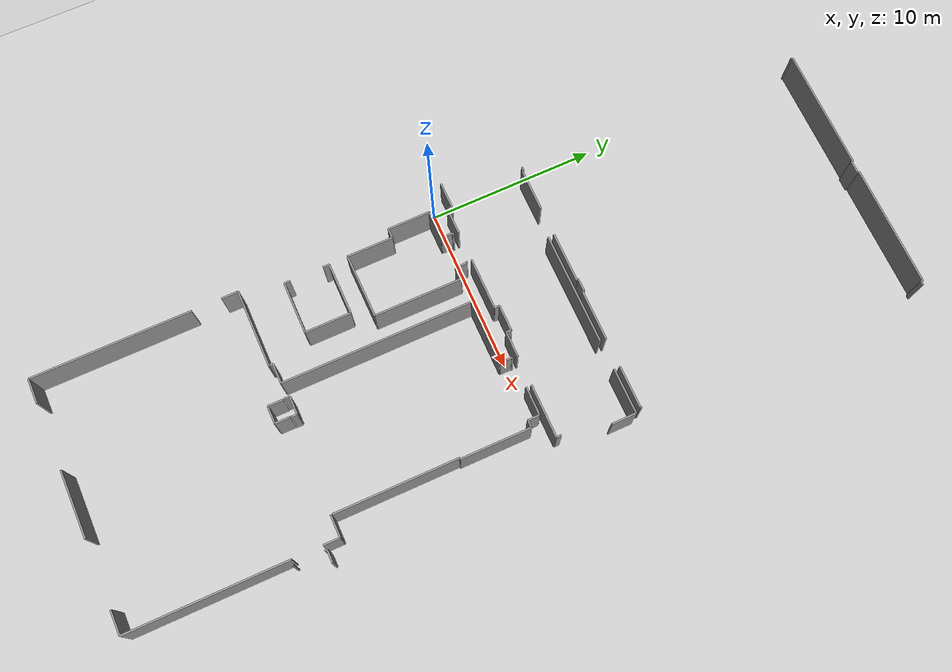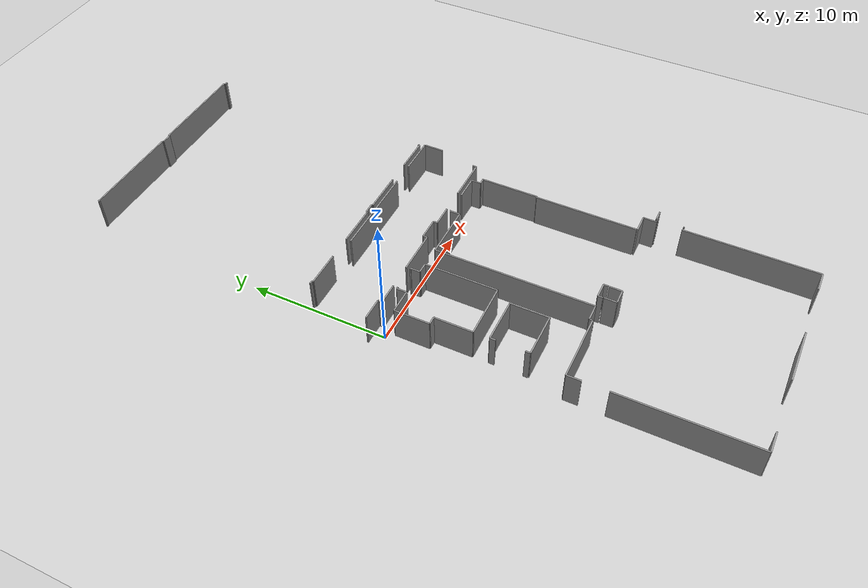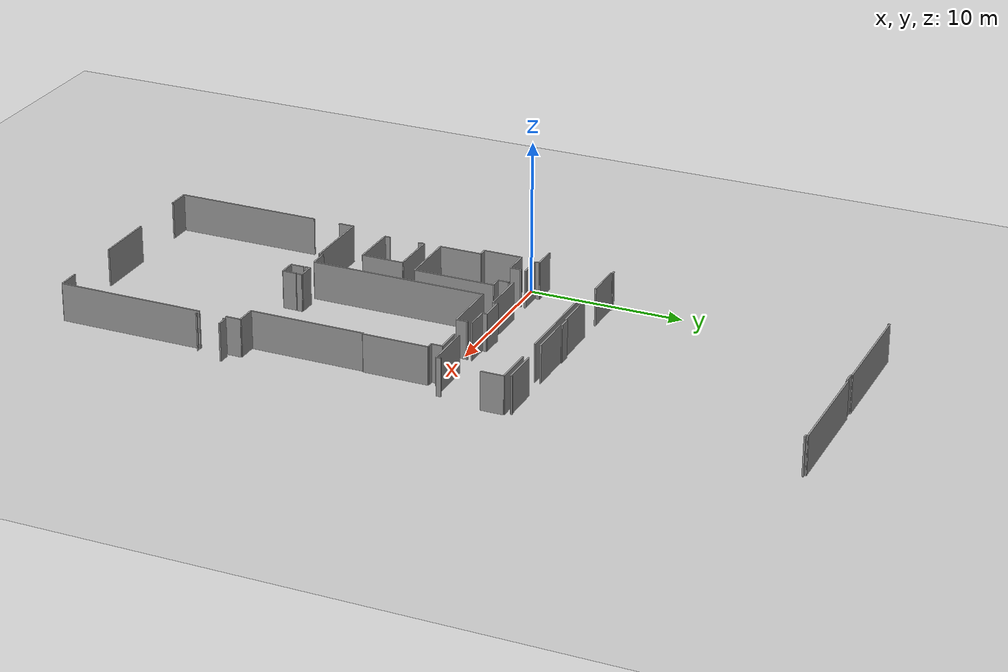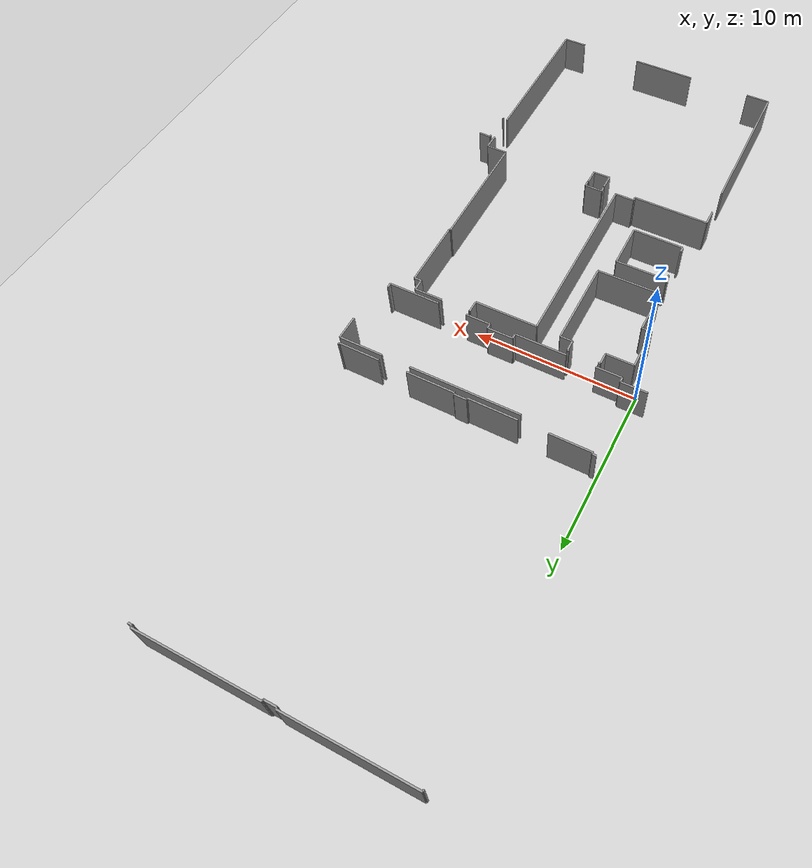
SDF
<sdf version="1.6">
 <world name="default">
  <model name="ground_plane">
   <static>1</static>
   <link name="link">
    <collision name="collision">
     <geometry><plane><normal>0 0 1</normal><size>100 100</size></plane></geometry>
     <surface><friction><ode><mu>100</mu><mu2>50</mu2></ode></friction></surface>
    </collision>
    <visual name="visual">
     <cast_shadows>0</cast_shadows>
     <geometry><plane><normal>0 0 1</normal><size>100 100</size></plane></geometry>
     <material>
      <script><uri>file://media/materials/scripts/gazebo.material</uri><name>Gazebo/Grey</name></script>
     </material>
    </visual>
   </link>
  </model>
  <model name="50057023">
   <static>1</static>
   <link name="Wall_90">
    <collision name="Wall_90_Collision">
     <geometry><box><size>0.108996107825 0.1 2.5</size></box></geometry>
     <pose>0.0544980539125 0 1.25 0 0 0</pose>
    </collision>
    <visual name="Wall_90_Visual">
     <pose>0.0544980539125 0 1.25 0 0 0</pose>
     <geometry><box><size>0.108996107825 0.1 2.5</size></box></geometry>
     <material>
      <script><uri>file://media/materials/scripts/gazebo.material</uri><name>Gazebo/Grey</name></script>
      <ambient>1 1 1 1</ambient>
     </material>
    </visual>
    <pose>56.2826750687 -0.111911120011 0 0 0 1.57079632679</pose>
   </link>
   <link name="Wall_91">
    <collision name="Wall_91_Collision">
     <geometry><box><size>7.31668058691 0.1 2.5</size></box></geometry>
     <pose>3.65834029345 0 1.25 0 0 0</pose>
    </collision>
    <visual name="Wall_91_Visual">
     <pose>3.65834029345 0 1.25 0 0 0</pose>
     <geometry><box><size>7.31668058691 0.1 2.5</size></box></geometry>
     <material>
      <script><uri>file://media/materials/scripts/gazebo.material</uri><name>Gazebo/Grey</name></script>
      <ambient>1 1 1 1</ambient>
     </material>
    </visual>
    <pose>56.2826750687 -0.00291501218602 0 0 0 0.0</pose>
   </link>
   <link name="Wall_92">
    <collision name="Wall_92_Collision">
     <geometry><box><size>0.0916327743692 0.1 2.5</size></box></geometry>
     <pose>0.0458163871846 0 1.25 0 0 0</pose>
    </collision>
    <visual name="Wall_92_Visual">
     <pose>0.0458163871846 0 1.25 0 0 0</pose>
     <geometry><box><size>0.0916327743692 0.1 2.5</size></box></geometry>
     <material>
      <script><uri>file://media/materials/scripts/gazebo.material</uri><name>Gazebo/Grey</name></script>
      <ambient>1 1 1 1</ambient>
     </material>
    </visual>
    <pose>63.5993556556 -0.00291501218602 0 0 0 -1.57079632679</pose>
   </link>
   <link name="Wall_93">
    <collision name="Wall_93_Collision">
     <geometry><box><size>0.741680491851 0.1 2.5</size></box></geometry>
     <pose>0.370840245926 0 1.25 0 0 0</pose>
    </collision>
    <visual name="Wall_93_Visual">
     <pose>0.370840245926 0 1.25 0 0 0</pose>
     <geometry><box><size>0.741680491851 0.1 2.5</size></box></geometry>
     <material>
      <script><uri>file://media/materials/scripts/gazebo.material</uri><name>Gazebo/Grey</name></script>
      <ambient>1 1 1 1</ambient>
     </material>
    </visual>
    <pose>63.5993556556 -0.0945477865552 0 0 0 0.0</pose>
   </link>
   <link name="Wall_94">
    <collision name="Wall_94_Collision">
     <geometry><box><size>0.0916327743692 0.1 2.5</size></box></geometry>
     <pose>0.0458163871846 0 1.25 0 0 0</pose>
    </collision>
    <visual name="Wall_94_Visual">
     <pose>0.0458163871846 0 1.25 0 0 0</pose>
     <geometry><box><size>0.0916327743692 0.1 2.5</size></box></geometry>
     <material>
      <script><uri>file://media/materials/scripts/gazebo.material</uri><name>Gazebo/Grey</name></script>
      <ambient>1 1 1 1</ambient>
     </material>
    </visual>
    <pose>64.3410361474 -0.0945477865552 0 0 0 1.57079632679</pose>
   </link>
   <link name="Wall_95">
    <collision name="Wall_95_Collision">
     <geometry><box><size>7.27498323868 0.1 2.5</size></box></geometry>
     <pose>3.63749161934 0 1.25 0 0 0</pose>
    </collision>
    <visual name="Wall_95_Visual">
     <pose>3.63749161934 0 1.25 0 0 0</pose>
     <geometry><box><size>7.27498323868 0.1 2.5</size></box></geometry>
     <material>
      <script><uri>file://media/materials/scripts/gazebo.material</uri><name>Gazebo/Grey</name></script>
      <ambient>1 1 1 1</ambient>
     </material>
    </visual>
    <pose>64.3410361474 -0.00291501218602 0 0 0 0.0</pose>
   </link>
   <link name="Wall_96">
    <collision name="Wall_96_Collision">
     <geometry><box><size>0.120022458268 0.1 2.5</size></box></geometry>
     <pose>0.0600112291339 0 1.25 0 0 0</pose>
    </collision>
    <visual name="Wall_96_Visual">
     <pose>0.0600112291339 0 1.25 0 0 0</pose>
     <geometry><box><size>0.120022458268 0.1 2.5</size></box></geometry>
     <material>
      <script><uri>file://media/materials/scripts/gazebo.material</uri><name>Gazebo/Grey</name></script>
      <ambient>1 1 1 1</ambient>
     </material>
    </visual>
    <pose>71.6160193861 -0.00291501218602 0 0 0 -1.57079632679</pose>
   </link>
   <link name="Wall_97">
    <collision name="Wall_97_Collision">
     <geometry><box><size>0.228131388471 0.1 2.5</size></box></geometry>
     <pose>0.114065694235 0 1.25 0 0 0</pose>
    </collision>
    <visual name="Wall_97_Visual">
     <pose>0.114065694235 0 1.25 0 0 0</pose>
     <geometry><box><size>0.228131388471 0.1 2.5</size></box></geometry>
     <material>
      <script><uri>file://media/materials/scripts/gazebo.material</uri><name>Gazebo/Grey</name></script>
      <ambient>1 1 1 1</ambient>
     </material>
    </visual>
    <pose>71.6160193861 -0.122937470454 0 0 0 0.0</pose>
   </link>
   <link name="Wall_100">
    <collision name="Wall_100_Collision">
     <geometry><box><size>0.0999975919465 0.1 2.5</size></box></geometry>
     <pose>0.0499987959732 0 1.25 0 0 0</pose>
    </collision>
    <visual name="Wall_100_Visual">
     <pose>0.0499987959732 0 1.25 0 0 0</pose>
     <geometry><box><size>0.0999975919465 0.1 2.5</size></box></geometry>
     <material>
      <script><uri>file://media/materials/scripts/gazebo.material</uri><name>Gazebo/Grey</name></script>
      <ambient>1 1 1 1</ambient>
     </material>
    </visual>
    <pose>71.6409870992 -17.5945065962 0 0 0 -1.57079632679</pose>
   </link>
   <link name="Wall_101">
    <collision name="Wall_101_Collision">
     <geometry><box><size>2.54163714689 0.1 2.5</size></box></geometry>
     <pose>1.27081857344 0 1.25 0 0 0</pose>
    </collision>
    <visual name="Wall_101_Visual">
     <pose>1.27081857344 0 1.25 0 0 0</pose>
     <geometry><box><size>2.54163714689 0.1 2.5</size></box></geometry>
     <material>
      <script><uri>file://media/materials/scripts/gazebo.material</uri><name>Gazebo/Grey</name></script>
      <ambient>1 1 1 1</ambient>
     </material>
    </visual>
    <pose>71.6409870992 -17.6945041881 0 0 0 3.14159265359</pose>
   </link>
   <link name="Wall_102">
    <collision name="Wall_102_Collision">
     <geometry><box><size>2.98547943712 0.1 2.5</size></box></geometry>
     <pose>1.49273971856 0 1.25 0 0 0</pose>
    </collision>
    <visual name="Wall_102_Visual">
     <pose>1.49273971856 0 1.25 0 0 0</pose>
     <geometry><box><size>2.98547943712 0.1 2.5</size></box></geometry>
     <material>
      <script><uri>file://media/materials/scripts/gazebo.material</uri><name>Gazebo/Grey</name></script>
      <ambient>1 1 1 1</ambient>
     </material>
    </visual>
    <pose>67.356933103 -17.6945041881 0 0 0 3.14159265359</pose>
   </link>
   <link name="Wall_103">
    <collision name="Wall_103_Collision">
     <geometry><box><size>0.0930269106321 0.1 2.5</size></box></geometry>
     <pose>0.046513455316 0 1.25 0 0 0</pose>
    </collision>
    <visual name="Wall_103_Visual">
     <pose>0.046513455316 0 1.25 0 0 0</pose>
     <geometry><box><size>0.0930269106321 0.1 2.5</size></box></geometry>
     <material>
      <script><uri>file://media/materials/scripts/gazebo.material</uri><name>Gazebo/Grey</name></script>
      <ambient>1 1 1 1</ambient>
     </material>
    </visual>
    <pose>64.3714536659 -17.6945041881 0 0 0 1.57079632679</pose>
   </link>
   <link name="Wall_104">
    <collision name="Wall_104_Collision">
     <geometry><box><size>0.775393241481 0.1 2.5</size></box></geometry>
     <pose>0.38769662074 0 1.25 0 0 0</pose>
    </collision>
    <visual name="Wall_104_Visual">
     <pose>0.38769662074 0 1.25 0 0 0</pose>
     <geometry><box><size>0.775393241481 0.1 2.5</size></box></geometry>
     <material>
      <script><uri>file://media/materials/scripts/gazebo.material</uri><name>Gazebo/Grey</name></script>
      <ambient>1 1 1 1</ambient>
     </material>
    </visual>
    <pose>64.3714536659 -17.6014772775 0 0 0 3.14159265359</pose>
   </link>
   <link name="Wall_105">
    <collision name="Wall_105_Collision">
     <geometry><box><size>0.0941675675744 0.1 2.5</size></box></geometry>
     <pose>0.0470837837872 0 1.25 0 0 0</pose>
    </collision>
    <visual name="Wall_105_Visual">
     <pose>0.0470837837872 0 1.25 0 0 0</pose>
     <geometry><box><size>0.0941675675744 0.1 2.5</size></box></geometry>
     <material>
      <script><uri>file://media/materials/scripts/gazebo.material</uri><name>Gazebo/Grey</name></script>
      <ambient>1 1 1 1</ambient>
     </material>
    </visual>
    <pose>63.5960604244 -17.6014772775 0 0 0 -1.57079632679</pose>
   </link>
   <link name="Wall_106">
    <collision name="Wall_106_Collision">
     <geometry><box><size>2.99270359776 0.1 2.5</size></box></geometry>
     <pose>1.49635179888 0 1.25 0 0 0</pose>
    </collision>
    <visual name="Wall_106_Visual">
     <pose>1.49635179888 0 1.25 0 0 0</pose>
     <geometry><box><size>2.99270359776 0.1 2.5</size></box></geometry>
     <material>
      <script><uri>file://media/materials/scripts/gazebo.material</uri><name>Gazebo/Grey</name></script>
      <ambient>1 1 1 1</ambient>
     </material>
    </visual>
    <pose>63.5960604244 -17.6956448451 0 0 0 3.14159265359</pose>
   </link>
   <link name="Wall_107">
    <collision name="Wall_107_Collision">
     <geometry><box><size>2.53365254829 0.1 2.5</size></box></geometry>
     <pose>1.26682627415 0 1.25 0 0 0</pose>
    </collision>
    <visual name="Wall_107_Visual">
     <pose>1.26682627415 0 1.25 0 0 0</pose>
     <geometry><box><size>2.53365254829 0.1 2.5</size></box></geometry>
     <material>
      <script><uri>file://media/materials/scripts/gazebo.material</uri><name>Gazebo/Grey</name></script>
      <ambient>1 1 1 1</ambient>
     </material>
    </visual>
    <pose>58.8410418507 -17.6956448451 0 0 0 3.14159265359</pose>
   </link>
   <link name="Wall_108">
    <collision name="Wall_108_Collision">
     <geometry><box><size>0.0927734313115 0.1 2.5</size></box></geometry>
     <pose>0.0463867156558 0 1.25 0 0 0</pose>
    </collision>
    <visual name="Wall_108_Visual">
     <pose>0.0463867156558 0 1.25 0 0 0</pose>
     <geometry><box><size>0.0927734313115 0.1 2.5</size></box></geometry>
     <material>
      <script><uri>file://media/materials/scripts/gazebo.material</uri><name>Gazebo/Grey</name></script>
      <ambient>1 1 1 1</ambient>
     </material>
    </visual>
    <pose>56.3073893024 -17.6956448451 0 0 0 1.57079632679</pose>
   </link>
   <link name="Wall_109">
    <collision name="Wall_109_Collision">
     <geometry><box><size>0.23323823612 0.1 2.5</size></box></geometry>
     <pose>0.11661911806 0 1.25 0 0 0</pose>
    </collision>
    <visual name="Wall_109_Visual">
     <pose>0.11661911806 0 1.25 0 0 0</pose>
     <geometry><box><size>0.23323823612 0.1 2.5</size></box></geometry>
     <material>
      <script><uri>file://media/materials/scripts/gazebo.material</uri><name>Gazebo/Grey</name></script>
      <ambient>1 1 1 1</ambient>
     </material>
    </visual>
    <pose>56.3073893024 -17.6028714137 0 0 0 3.10408985403</pose>
   </link>
   <link name="Wall_126">
    <collision name="Wall_126_Collision">
     <geometry><box><size>6.75573085059 0.1 2.5</size></box></geometry>
     <pose>3.37786542529 0 1.25 0 0 0</pose>
    </collision>
    <visual name="Wall_126_Visual">
     <pose>3.37786542529 0 1.25 0 0 0</pose>
     <geometry><box><size>6.75573085059 0.1 2.5</size></box></geometry>
     <material>
      <script><uri>file://media/materials/scripts/gazebo.material</uri><name>Gazebo/Grey</name></script>
      <ambient>1 1 1 1</ambient>
     </material>
    </visual>
    <pose>60.5956257074 -18.0529239473 0 0 0 0.0</pose>
   </link>
   <link name="Wall_127">
    <collision name="Wall_127_Collision">
     <geometry><box><size>2.72769096815 0.1 2.5</size></box></geometry>
     <pose>1.36384548408 0 1.25 0 0 0</pose>
    </collision>
    <visual name="Wall_127_Visual">
     <pose>1.36384548408 0 1.25 0 0 0</pose>
     <geometry><box><size>2.72769096815 0.1 2.5</size></box></geometry>
     <material>
      <script><uri>file://media/materials/scripts/gazebo.material</uri><name>Gazebo/Grey</name></script>
      <ambient>1 1 1 1</ambient>
     </material>
    </visual>
    <pose>69.1075880302 -18.0529239473 0 0 0 0.0</pose>
   </link>
   <link name="Wall_128">
    <collision name="Wall_128_Collision">
     <geometry><box><size>1.46498373296 0.1 2.5</size></box></geometry>
     <pose>0.732491866482 0 1.25 0 0 0</pose>
    </collision>
    <visual name="Wall_128_Visual">
     <pose>0.732491866482 0 1.25 0 0 0</pose>
     <geometry><box><size>1.46498373296 0.1 2.5</size></box></geometry>
     <material>
      <script><uri>file://media/materials/scripts/gazebo.material</uri><name>Gazebo/Grey</name></script>
      <ambient>1 1 1 1</ambient>
     </material>
    </visual>
    <pose>71.8352789984 -18.0529239473 0 0 0 -1.57079632679</pose>
   </link>
   <link name="Wall_131">
    <collision name="Wall_131_Collision">
     <geometry><box><size>0.297584722294 0.1 2.5</size></box></geometry>
     <pose>0.148792361147 0 1.25 0 0 0</pose>
    </collision>
    <visual name="Wall_131_Visual">
     <pose>0.148792361147 0 1.25 0 0 0</pose>
     <geometry><box><size>0.297584722294 0.1 2.5</size></box></geometry>
     <material>
      <script><uri>file://media/materials/scripts/gazebo.material</uri><name>Gazebo/Grey</name></script>
      <ambient>1 1 1 1</ambient>
     </material>
    </visual>
    <pose>71.2638098702 -22.2747487703 0 0 0 -1.57079632679</pose>
   </link>
   <link name="Wall_132">
    <collision name="Wall_132_Collision">
     <geometry><box><size>3.19599401282 0.1 2.5</size></box></geometry>
     <pose>1.59799700641 0 1.25 0 0 0</pose>
    </collision>
    <visual name="Wall_132_Visual">
     <pose>1.59799700641 0 1.25 0 0 0</pose>
     <geometry><box><size>3.19599401282 0.1 2.5</size></box></geometry>
     <material>
      <script><uri>file://media/materials/scripts/gazebo.material</uri><name>Gazebo/Grey</name></script>
      <ambient>1 1 1 1</ambient>
     </material>
    </visual>
    <pose>71.2638098702 -22.5723334926 0 0 0 3.14159265359</pose>
   </link>
   <link name="Wall_133">
    <collision name="Wall_133_Collision">
     <geometry><box><size>1.52379093533 0.1 2.5</size></box></geometry>
     <pose>0.761895467663 0 1.25 0 0 0</pose>
    </collision>
    <visual name="Wall_133_Visual">
     <pose>0.761895467663 0 1.25 0 0 0</pose>
     <geometry><box><size>1.52379093533 0.1 2.5</size></box></geometry>
     <material>
      <script><uri>file://media/materials/scripts/gazebo.material</uri><name>Gazebo/Grey</name></script>
      <ambient>1 1 1 1</ambient>
     </material>
    </visual>
    <pose>66.281420346 -22.5723334926 0 0 0 3.14159265359</pose>
   </link>
   <link name="Wall_134">
    <collision name="Wall_134_Collision">
     <geometry><box><size>0.296063846371 0.1 2.5</size></box></geometry>
     <pose>0.148031923186 0 1.25 0 0 0</pose>
    </collision>
    <visual name="Wall_134_Visual">
     <pose>0.148031923186 0 1.25 0 0 0</pose>
     <geometry><box><size>0.296063846371 0.1 2.5</size></box></geometry>
     <material>
      <script><uri>file://media/materials/scripts/gazebo.material</uri><name>Gazebo/Grey</name></script>
      <ambient>1 1 1 1</ambient>
     </material>
    </visual>
    <pose>64.7576294107 -22.5723334926 0 0 0 1.57079632679</pose>
   </link>
   <link name="Wall_135">
    <collision name="Wall_135_Collision">
     <geometry><box><size>1.57157178724 0.1 2.5</size></box></geometry>
     <pose>0.785785893622 0 1.25 0 0 0</pose>
    </collision>
    <visual name="Wall_135_Visual">
     <pose>0.785785893622 0 1.25 0 0 0</pose>
     <geometry><box><size>1.57157178724 0.1 2.5</size></box></geometry>
     <material>
      <script><uri>file://media/materials/scripts/gazebo.material</uri><name>Gazebo/Grey</name></script>
      <ambient>1 1 1 1</ambient>
     </material>
    </visual>
    <pose>64.7576294107 -22.2762696462 0 0 0 3.14159265359</pose>
   </link>
   <link name="Wall_136">
    <collision name="Wall_136_Collision">
     <geometry><box><size>0.306583238173 0.1 2.5</size></box></geometry>
     <pose>0.153291619086 0 1.25 0 0 0</pose>
    </collision>
    <visual name="Wall_136_Visual">
     <pose>0.153291619086 0 1.25 0 0 0</pose>
     <geometry><box><size>0.306583238173 0.1 2.5</size></box></geometry>
     <material>
      <script><uri>file://media/materials/scripts/gazebo.material</uri><name>Gazebo/Grey</name></script>
      <ambient>1 1 1 1</ambient>
     </material>
    </visual>
    <pose>63.1860576235 -22.2762696462 0 0 0 -1.57079632679</pose>
   </link>
   <link name="Wall_137">
    <collision name="Wall_137_Collision">
     <geometry><box><size>3.13376483963 0.1 2.5</size></box></geometry>
     <pose>1.56688241981 0 1.25 0 0 0</pose>
    </collision>
    <visual name="Wall_137_Visual">
     <pose>1.56688241981 0 1.25 0 0 0</pose>
     <geometry><box><size>3.13376483963 0.1 2.5</size></box></geometry>
     <material>
      <script><uri>file://media/materials/scripts/gazebo.material</uri><name>Gazebo/Grey</name></script>
      <ambient>1 1 1 1</ambient>
     </material>
    </visual>
    <pose>63.1860576235 -22.5828528844 0 0 0 3.14159265359</pose>
   </link>
   <link name="Wall_138">
    <collision name="Wall_138_Collision">
     <geometry><box><size>1.56891025438 0.1 2.5</size></box></geometry>
     <pose>0.78445512719 0 1.25 0 0 0</pose>
    </collision>
    <visual name="Wall_138_Visual">
     <pose>0.78445512719 0 1.25 0 0 0</pose>
     <geometry><box><size>1.56891025438 0.1 2.5</size></box></geometry>
     <material>
      <script><uri>file://media/materials/scripts/gazebo.material</uri><name>Gazebo/Grey</name></script>
      <ambient>1 1 1 1</ambient>
     </material>
    </visual>
    <pose>58.2828803869 -22.5828528844 0 0 0 3.14159265359</pose>
   </link>
   <link name="Wall_139">
    <collision name="Wall_139_Collision">
     <geometry><box><size>0.293275573845 0.1 2.5</size></box></geometry>
     <pose>0.146637786923 0 1.25 0 0 0</pose>
    </collision>
    <visual name="Wall_139_Visual">
     <pose>0.146637786923 0 1.25 0 0 0</pose>
     <geometry><box><size>0.293275573845 0.1 2.5</size></box></geometry>
     <material>
      <script><uri>file://media/materials/scripts/gazebo.material</uri><name>Gazebo/Grey</name></script>
      <ambient>1 1 1 1</ambient>
     </material>
    </visual>
    <pose>56.7139701325 -22.5828528844 0 0 0 1.57079632679</pose>
   </link>
   <link name="Wall_140">
    <collision name="Wall_140_Collision">
     <geometry><box><size>1.60059516944 0.1 2.5</size></box></geometry>
     <pose>0.800297584722 0 1.25 0 0 0</pose>
    </collision>
    <visual name="Wall_140_Visual">
     <pose>0.800297584722 0 1.25 0 0 0</pose>
     <geometry><box><size>1.60059516944 0.1 2.5</size></box></geometry>
     <material>
      <script><uri>file://media/materials/scripts/gazebo.material</uri><name>Gazebo/Grey</name></script>
      <ambient>1 1 1 1</ambient>
     </material>
    </visual>
    <pose>56.7139701325 -22.2895773106 0 0 0 3.14159265359</pose>
   </link>
   <link name="Wall_333">
    <collision name="Wall_333_Collision">
     <geometry><box><size>9.5304422327 0.1 2.5</size></box></geometry>
     <pose>4.76522111635 0 1.25 0 0 0</pose>
    </collision>
    <visual name="Wall_333_Visual">
     <pose>4.76522111635 0 1.25 0 0 0</pose>
     <geometry><box><size>9.5304422327 0.1 2.5</size></box></geometry>
     <material>
      <script><uri>file://media/materials/scripts/gazebo.material</uri><name>Gazebo/Grey</name></script>
      <ambient>1 1 1 1</ambient>
     </material>
    </visual>
    <pose>56.4298198142 -47.5666618928 0 0 0 1.57079632679</pose>
   </link>
   <link name="Wall_334">
    <collision name="Wall_334_Collision">
     <geometry><box><size>1.00124331607 0.1 2.5</size></box></geometry>
     <pose>0.500621658034 0 1.25 0 0 0</pose>
    </collision>
    <visual name="Wall_334_Visual">
     <pose>0.500621658034 0 1.25 0 0 0</pose>
     <geometry><box><size>1.00124331607 0.1 2.5</size></box></geometry>
     <material>
      <script><uri>file://media/materials/scripts/gazebo.material</uri><name>Gazebo/Grey</name></script>
      <ambient>1 1 1 1</ambient>
     </material>
    </visual>
    <pose>56.4298198142 -36.2695955357 0 0 0 1.57079632679</pose>
   </link>
   <link name="Wall_335">
    <collision name="Wall_335_Collision">
     <geometry><box><size>4.72016516713 0.1 2.5</size></box></geometry>
     <pose>2.36008258356 0 1.25 0 0 0</pose>
    </collision>
    <visual name="Wall_335_Visual">
     <pose>2.36008258356 0 1.25 0 0 0</pose>
     <geometry><box><size>4.72016516713 0.1 2.5</size></box></geometry>
     <material>
      <script><uri>file://media/materials/scripts/gazebo.material</uri><name>Gazebo/Grey</name></script>
      <ambient>1 1 1 1</ambient>
     </material>
    </visual>
    <pose>56.4298198142 -35.2683522197 0 0 0 0.0</pose>
   </link>
   <link name="Wall_336">
    <collision name="Wall_336_Collision">
     <geometry><box><size>0.898330711935 0.1 2.5</size></box></geometry>
     <pose>0.449165355967 0 1.25 0 0 0</pose>
    </collision>
    <visual name="Wall_336_Visual">
     <pose>0.449165355967 0 1.25 0 0 0</pose>
     <geometry><box><size>0.898330711935 0.1 2.5</size></box></geometry>
     <material>
      <script><uri>file://media/materials/scripts/gazebo.material</uri><name>Gazebo/Grey</name></script>
      <ambient>1 1 1 1</ambient>
     </material>
    </visual>
    <pose>63.2482867966 -35.2683522197 0 0 0 -1.57079632679</pose>
   </link>
   <link name="Wall_337">
    <collision name="Wall_337_Collision">
     <geometry><box><size>1.0578959442 0.1 2.5</size></box></geometry>
     <pose>0.528947972102 0 1.25 0 0 0</pose>
    </collision>
    <visual name="Wall_337_Visual">
     <pose>0.528947972102 0 1.25 0 0 0</pose>
     <geometry><box><size>1.0578959442 0.1 2.5</size></box></geometry>
     <material>
      <script><uri>file://media/materials/scripts/gazebo.material</uri><name>Gazebo/Grey</name></script>
      <ambient>1 1 1 1</ambient>
     </material>
    </visual>
    <pose>63.2482867966 -36.1666829316 0 0 0 0.0</pose>
   </link>
   <link name="Wall_338">
    <collision name="Wall_338_Collision">
     <geometry><box><size>0.89136003062 0.1 2.5</size></box></geometry>
     <pose>0.44568001531 0 1.25 0 0 0</pose>
    </collision>
    <visual name="Wall_338_Visual">
     <pose>0.44568001531 0 1.25 0 0 0</pose>
     <geometry><box><size>0.89136003062 0.1 2.5</size></box></geometry>
     <material>
      <script><uri>file://media/materials/scripts/gazebo.material</uri><name>Gazebo/Grey</name></script>
      <ambient>1 1 1 1</ambient>
     </material>
    </visual>
    <pose>64.3061827408 -36.1666829316 0 0 0 1.57079632679</pose>
   </link>
   <link name="Wall_339">
    <collision name="Wall_339_Collision">
     <geometry><box><size>1.32050052027 0.1 2.5</size></box></geometry>
     <pose>0.660250260133 0 1.25 0 0 0</pose>
    </collision>
    <visual name="Wall_339_Visual">
     <pose>0.660250260133 0 1.25 0 0 0</pose>
     <geometry><box><size>1.32050052027 0.1 2.5</size></box></geometry>
     <material>
      <script><uri>file://media/materials/scripts/gazebo.material</uri><name>Gazebo/Grey</name></script>
      <ambient>1 1 1 1</ambient>
     </material>
    </visual>
    <pose>70.1330386214 -35.275322901 0 0 0 0.0</pose>
   </link>
   <link name="Wall_340">
    <collision name="Wall_340_Collision">
     <geometry><box><size>0.977542999598 0.1 2.5</size></box></geometry>
     <pose>0.488771499799 0 1.25 0 0 0</pose>
    </collision>
    <visual name="Wall_340_Visual">
     <pose>0.488771499799 0 1.25 0 0 0</pose>
     <geometry><box><size>0.977542999598 0.1 2.5</size></box></geometry>
     <material>
      <script><uri>file://media/materials/scripts/gazebo.material</uri><name>Gazebo/Grey</name></script>
      <ambient>1 1 1 1</ambient>
     </material>
    </visual>
    <pose>71.4535391416 -35.275322901 0 0 0 -1.57079632679</pose>
   </link>
   <link name="Wall_341">
    <collision name="Wall_341_Collision">
     <geometry><box><size>9.53627225707 0.1 2.5</size></box></geometry>
     <pose>4.76813612853 0 1.25 0 0 0</pose>
    </collision>
    <visual name="Wall_341_Visual">
     <pose>4.76813612853 0 1.25 0 0 0</pose>
     <geometry><box><size>9.53627225707 0.1 2.5</size></box></geometry>
     <material>
      <script><uri>file://media/materials/scripts/gazebo.material</uri><name>Gazebo/Grey</name></script>
      <ambient>1 1 1 1</ambient>
     </material>
    </visual>
    <pose>71.4535391416 -38.0289954995 0 0 0 -1.57079632679</pose>
   </link>
   <link name="Wall_342">
    <collision name="Wall_342_Collision">
     <geometry><box><size>1.45167606864 0.1 2.5</size></box></geometry>
     <pose>0.725838034319 0 1.25 0 0 0</pose>
    </collision>
    <visual name="Wall_342_Visual">
     <pose>0.725838034319 0 1.25 0 0 0</pose>
     <geometry><box><size>1.45167606864 0.1 2.5</size></box></geometry>
     <material>
      <script><uri>file://media/materials/scripts/gazebo.material</uri><name>Gazebo/Grey</name></script>
      <ambient>1 1 1 1</ambient>
     </material>
    </visual>
    <pose>71.4535391416 -47.5652677565 0 0 0 3.14159265359</pose>
   </link>
   <link name="Wall_343">
    <collision name="Wall_343_Collision">
     <geometry><box><size>4.02892706006 0.1 2.5</size></box></geometry>
     <pose>2.01446353003 0 1.25 0 0 0</pose>
    </collision>
    <visual name="Wall_343_Visual">
     <pose>2.01446353003 0 1.25 0 0 0</pose>
     <geometry><box><size>4.02892706006 0.1 2.5</size></box></geometry>
     <material>
      <script><uri>file://media/materials/scripts/gazebo.material</uri><name>Gazebo/Grey</name></script>
      <ambient>1 1 1 1</ambient>
     </material>
    </visual>
    <pose>65.9946084949 -47.5652677565 0 0 0 3.14159265359</pose>
   </link>
   <link name="Wall_344">
    <collision name="Wall_344_Collision">
     <geometry><box><size>1.49236015077 0.1 2.5</size></box></geometry>
     <pose>0.746180075385 0 1.25 0 0 0</pose>
    </collision>
    <visual name="Wall_344_Visual">
     <pose>0.746180075385 0 1.25 0 0 0</pose>
     <geometry><box><size>1.49236015077 0.1 2.5</size></box></geometry>
     <material>
      <script><uri>file://media/materials/scripts/gazebo.material</uri><name>Gazebo/Grey</name></script>
      <ambient>1 1 1 1</ambient>
     </material>
    </visual>
    <pose>57.9221793138 -47.5652677565 0 0 0 -3.14065847127</pose>
   </link>
   <link name="Wall_345">
    <collision name="Wall_345_Collision">
     <geometry><box><size>0.191630366316 0.1 2.5</size></box></geometry>
     <pose>0.0958151831578 0 1.25 0 0 0</pose>
    </collision>
    <visual name="Wall_345_Visual">
     <pose>0.0958151831578 0 1.25 0 0 0</pose>
     <geometry><box><size>0.191630366316 0.1 2.5</size></box></geometry>
     <material>
      <script><uri>file://media/materials/scripts/gazebo.material</uri><name>Gazebo/Grey</name></script>
      <ambient>1 1 1 1</ambient>
     </material>
    </visual>
    <pose>61.149351283 -35.2195574505 0 0 0 1.57079632679</pose>
   </link>
   <link name="Wall_346">
    <collision name="Wall_346_Collision">
     <geometry><box><size>1.19160628578 0.1 2.5</size></box></geometry>
     <pose>0.59580314289 0 1.25 0 0 0</pose>
    </collision>
    <visual name="Wall_346_Visual">
     <pose>0.59580314289 0 1.25 0 0 0</pose>
     <geometry><box><size>1.19160628578 0.1 2.5</size></box></geometry>
     <material>
      <script><uri>file://media/materials/scripts/gazebo.material</uri><name>Gazebo/Grey</name></script>
      <ambient>1 1 1 1</ambient>
     </material>
    </visual>
    <pose>61.149351283 -35.0279270841 0 0 0 0.0</pose>
   </link>
   <link name="Wall_347">
    <collision name="Wall_347_Collision">
     <geometry><box><size>11.4250734139 0.1 2.5</size></box></geometry>
     <pose>5.71253670697 0 1.25 0 0 0</pose>
    </collision>
    <visual name="Wall_347_Visual">
     <pose>5.71253670697 0 1.25 0 0 0</pose>
     <geometry><box><size>11.4250734139 0.1 2.5</size></box></geometry>
     <material>
      <script><uri>file://media/materials/scripts/gazebo.material</uri><name>Gazebo/Grey</name></script>
      <ambient>1 1 1 1</ambient>
     </material>
    </visual>
    <pose>62.3409575688 -35.0279270841 0 0 0 1.57079632679</pose>
   </link>
   <link name="Wall_348">
    <collision name="Wall_348_Collision">
     <geometry><box><size>3.86670029492 0.1 2.5</size></box></geometry>
     <pose>1.93335014746 0 1.25 0 0 0</pose>
    </collision>
    <visual name="Wall_348_Visual">
     <pose>1.93335014746 0 1.25 0 0 0</pose>
     <geometry><box><size>3.86670029492 0.1 2.5</size></box></geometry>
     <material>
      <script><uri>file://media/materials/scripts/gazebo.material</uri><name>Gazebo/Grey</name></script>
      <ambient>1 1 1 1</ambient>
     </material>
    </visual>
    <pose>62.3409575688 -23.6028536702 0 0 0 0.0</pose>
   </link>
   <link name="Wall_349">
    <collision name="Wall_349_Collision">
     <geometry><box><size>0.724950856697 0.1 2.5</size></box></geometry>
     <pose>0.362475428348 0 1.25 0 0 0</pose>
    </collision>
    <visual name="Wall_349_Visual">
     <pose>0.362475428348 0 1.25 0 0 0</pose>
     <geometry><box><size>0.724950856697 0.1 2.5</size></box></geometry>
     <material>
      <script><uri>file://media/materials/scripts/gazebo.material</uri><name>Gazebo/Grey</name></script>
      <ambient>1 1 1 1</ambient>
     </material>
    </visual>
    <pose>66.2076578638 -23.6028536702 0 0 0 1.57079632679</pose>
   </link>
   <link name="Wall_350">
    <collision name="Wall_350_Collision">
     <geometry><box><size>0.0750298788749 0.1 2.5</size></box></geometry>
     <pose>0.0375149394375 0 1.25 0 0 0</pose>
    </collision>
    <visual name="Wall_350_Visual">
     <pose>0.0375149394375 0 1.25 0 0 0</pose>
     <geometry><box><size>0.0750298788749 0.1 2.5</size></box></geometry>
     <material>
      <script><uri>file://media/materials/scripts/gazebo.material</uri><name>Gazebo/Grey</name></script>
      <ambient>1 1 1 1</ambient>
     </material>
    </visual>
    <pose>66.2076578638 -22.8779028135 0 0 0 0.0</pose>
   </link>
   <link name="Wall_351">
    <collision name="Wall_351_Collision">
     <geometry><box><size>1.73189745748 0.1 2.5</size></box></geometry>
     <pose>0.865948728738 0 1.25 0 0 0</pose>
    </collision>
    <visual name="Wall_351_Visual">
     <pose>0.865948728738 0 1.25 0 0 0</pose>
     <geometry><box><size>1.73189745748 0.1 2.5</size></box></geometry>
     <material>
      <script><uri>file://media/materials/scripts/gazebo.material</uri><name>Gazebo/Grey</name></script>
      <ambient>1 1 1 1</ambient>
     </material>
    </visual>
    <pose>68.0381587769 -22.8779028135 0 0 0 0.0</pose>
   </link>
   <link name="Wall_352">
    <collision name="Wall_352_Collision">
     <geometry><box><size>0.701630759209 0.1 2.5</size></box></geometry>
     <pose>0.350815379604 0 1.25 0 0 0</pose>
    </collision>
    <visual name="Wall_352_Visual">
     <pose>0.350815379604 0 1.25 0 0 0</pose>
     <geometry><box><size>0.701630759209 0.1 2.5</size></box></geometry>
     <material>
      <script><uri>file://media/materials/scripts/gazebo.material</uri><name>Gazebo/Grey</name></script>
      <ambient>1 1 1 1</ambient>
     </material>
    </visual>
    <pose>69.7700562344 -22.8779028135 0 0 0 -1.57079632679</pose>
   </link>
   <link name="Wall_353">
    <collision name="Wall_353_Collision">
     <geometry><box><size>0.450179273249 0.1 2.5</size></box></geometry>
     <pose>0.225089636625 0 1.25 0 0 0</pose>
    </collision>
    <visual name="Wall_353_Visual">
     <pose>0.225089636625 0 1.25 0 0 0</pose>
     <geometry><box><size>0.450179273249 0.1 2.5</size></box></geometry>
     <material>
      <script><uri>file://media/materials/scripts/gazebo.material</uri><name>Gazebo/Grey</name></script>
      <ambient>1 1 1 1</ambient>
     </material>
    </visual>
    <pose>69.7700562344 -23.5795335727 0 0 0 0.0</pose>
   </link>
   <link name="Wall_354">
    <collision name="Wall_354_Collision">
     <geometry><box><size>4.2233456989 0.1 2.5</size></box></geometry>
     <pose>2.11167284945 0 1.25 0 0 0</pose>
    </collision>
    <visual name="Wall_354_Visual">
     <pose>2.11167284945 0 1.25 0 0 0</pose>
     <geometry><box><size>4.2233456989 0.1 2.5</size></box></geometry>
     <material>
      <script><uri>file://media/materials/scripts/gazebo.material</uri><name>Gazebo/Grey</name></script>
      <ambient>1 1 1 1</ambient>
     </material>
    </visual>
    <pose>70.2202355076 -23.5795335727 0 0 0 -1.57079632679</pose>
   </link>
   <link name="Wall_355">
    <collision name="Wall_355_Collision">
     <geometry><box><size>0.0792122876636 0.1 2.5</size></box></geometry>
     <pose>0.0396061438318 0 1.25 0 0 0</pose>
    </collision>
    <visual name="Wall_355_Visual">
     <pose>0.0396061438318 0 1.25 0 0 0</pose>
     <geometry><box><size>0.0792122876636 0.1 2.5</size></box></geometry>
     <material>
      <script><uri>file://media/materials/scripts/gazebo.material</uri><name>Gazebo/Grey</name></script>
      <ambient>1 1 1 1</ambient>
     </material>
    </visual>
    <pose>70.2202355076 -27.8028792716 0 0 0 3.14159265359</pose>
   </link>
   <link name="Wall_356">
    <collision name="Wall_356_Collision">
     <geometry><box><size>7.40831336128 0.1 2.5</size></box></geometry>
     <pose>3.70415668064 0 1.25 0 0 0</pose>
    </collision>
    <visual name="Wall_356_Visual">
     <pose>3.70415668064 0 1.25 0 0 0</pose>
     <geometry><box><size>7.40831336128 0.1 2.5</size></box></geometry>
     <material>
      <script><uri>file://media/materials/scripts/gazebo.material</uri><name>Gazebo/Grey</name></script>
      <ambient>1 1 1 1</ambient>
     </material>
    </visual>
    <pose>70.14102322 -27.8028792716 0 0 0 -1.57079632679</pose>
   </link>
   <link name="Wall_357">
    <collision name="Wall_357_Collision">
     <geometry><box><size>0.342450562027 0.1 2.5</size></box></geometry>
     <pose>0.171225281014 0 1.25 0 0 0</pose>
    </collision>
    <visual name="Wall_357_Visual">
     <pose>0.171225281014 0 1.25 0 0 0</pose>
     <geometry><box><size>0.342450562027 0.1 2.5</size></box></geometry>
     <material>
      <script><uri>file://media/materials/scripts/gazebo.material</uri><name>Gazebo/Grey</name></script>
      <ambient>1 1 1 1</ambient>
     </material>
    </visual>
    <pose>64.3264610865 -35.2111926329 0 0 0 1.57079632679</pose>
   </link>
   <link name="Wall_358">
    <collision name="Wall_358_Collision">
     <geometry><box><size>1.10212808564 0.1 2.5</size></box></geometry>
     <pose>0.551064042818 0 1.25 0 0 0</pose>
    </collision>
    <visual name="Wall_358_Visual">
     <pose>0.551064042818 0 1.25 0 0 0</pose>
     <geometry><box><size>1.10212808564 0.1 2.5</size></box></geometry>
     <material>
      <script><uri>file://media/materials/scripts/gazebo.material</uri><name>Gazebo/Grey</name></script>
      <ambient>1 1 1 1</ambient>
     </material>
    </visual>
    <pose>64.3264610865 -34.8687420709 0 0 0 3.14159265359</pose>
   </link>
   <link name="Wall_359">
    <collision name="Wall_359_Collision">
     <geometry><box><size>0.335353141052 0.1 2.5</size></box></geometry>
     <pose>0.167676570526 0 1.25 0 0 0</pose>
    </collision>
    <visual name="Wall_359_Visual">
     <pose>0.167676570526 0 1.25 0 0 0</pose>
     <geometry><box><size>0.335353141052 0.1 2.5</size></box></geometry>
     <material>
      <script><uri>file://media/materials/scripts/gazebo.material</uri><name>Gazebo/Grey</name></script>
      <ambient>1 1 1 1</ambient>
     </material>
    </visual>
    <pose>63.2243330009 -34.8687420709 0 0 0 -1.57079632679</pose>
   </link>
   <link name="Wall_360">
    <collision name="Wall_360_Collision">
     <geometry><box><size>0.030671259641 0.1 2.5</size></box></geometry>
     <pose>0.0153356298205 0 1.25 0 0 0</pose>
    </collision>
    <visual name="Wall_360_Visual">
     <pose>0.0153356298205 0 1.25 0 0 0</pose>
     <geometry><box><size>0.030671259641 0.1 2.5</size></box></geometry>
     <material>
      <script><uri>file://media/materials/scripts/gazebo.material</uri><name>Gazebo/Grey</name></script>
      <ambient>1 1 1 1</ambient>
     </material>
    </visual>
    <pose>61.175839872 -35.2040952119 0 0 0 -2.61322076317</pose>
   </link>
   <link name="Wall_361">
    <collision name="Wall_361_Collision">
     <geometry><box><size>2.74999714836 0.1 2.5</size></box></geometry>
     <pose>1.37499857418 0 1.25 0 0 0</pose>
    </collision>
    <visual name="Wall_361_Visual">
     <pose>1.37499857418 0 1.25 0 0 0</pose>
     <geometry><box><size>2.74999714836 0.1 2.5</size></box></geometry>
     <material>
      <script><uri>file://media/materials/scripts/gazebo.material</uri><name>Gazebo/Grey</name></script>
      <ambient>1 1 1 1</ambient>
     </material>
    </visual>
    <pose>57.0076259254 -28.8862498875 0 0 0 1.57079632679</pose>
   </link>
   <link name="Wall_362">
    <collision name="Wall_362_Collision">
     <geometry><box><size>0.574891098947 0.1 2.5</size></box></geometry>
     <pose>0.287445549473 0 1.25 0 0 0</pose>
    </collision>
    <visual name="Wall_362_Visual">
     <pose>0.287445549473 0 1.25 0 0 0</pose>
     <geometry><box><size>0.574891098947 0.1 2.5</size></box></geometry>
     <material>
      <script><uri>file://media/materials/scripts/gazebo.material</uri><name>Gazebo/Grey</name></script>
      <ambient>1 1 1 1</ambient>
     </material>
    </visual>
    <pose>57.0076259254 -26.1362527392 0 0 0 3.14159265359</pose>
   </link>
   <link name="Wall_363">
    <collision name="Wall_363_Collision">
     <geometry><box><size>2.52351337547 0.1 2.5</size></box></geometry>
     <pose>1.26175668774 0 1.25 0 0 0</pose>
    </collision>
    <visual name="Wall_363_Visual">
     <pose>1.26175668774 0 1.25 0 0 0</pose>
     <geometry><box><size>2.52351337547 0.1 2.5</size></box></geometry>
     <material>
      <script><uri>file://media/materials/scripts/gazebo.material</uri><name>Gazebo/Grey</name></script>
      <ambient>1 1 1 1</ambient>
     </material>
    </visual>
    <pose>56.4327348264 -26.1362527392 0 0 0 1.57079632679</pose>
   </link>
   <link name="Wall_364">
    <collision name="Wall_364_Collision">
     <geometry><box><size>1.71782935519 0.1 2.5</size></box></geometry>
     <pose>0.858914677593 0 1.25 0 0 0</pose>
    </collision>
    <visual name="Wall_364_Visual">
     <pose>0.858914677593 0 1.25 0 0 0</pose>
     <geometry><box><size>1.71782935519 0.1 2.5</size></box></geometry>
     <material>
      <script><uri>file://media/materials/scripts/gazebo.material</uri><name>Gazebo/Grey</name></script>
      <ambient>1 1 1 1</ambient>
     </material>
    </visual>
    <pose>56.4327348264 -23.6127393637 0 0 0 0.0</pose>
   </link>
   <link name="Wall_365">
    <collision name="Wall_365_Collision">
     <geometry><box><size>0.713924506254 0.1 2.5</size></box></geometry>
     <pose>0.356962253127 0 1.25 0 0 0</pose>
    </collision>
    <visual name="Wall_365_Visual">
     <pose>0.356962253127 0 1.25 0 0 0</pose>
     <geometry><box><size>0.713924506254 0.1 2.5</size></box></geometry>
     <material>
      <script><uri>file://media/materials/scripts/gazebo.material</uri><name>Gazebo/Grey</name></script>
      <ambient>1 1 1 1</ambient>
     </material>
    </visual>
    <pose>58.1505641816 -23.6127393637 0 0 0 1.57079632679</pose>
   </link>
   <link name="Wall_366">
    <collision name="Wall_366_Collision">
     <geometry><box><size>0.126612920601 0.1 2.5</size></box></geometry>
     <pose>0.0633064603007 0 1.25 0 0 0</pose>
    </collision>
    <visual name="Wall_366_Visual">
     <pose>0.0633064603007 0 1.25 0 0 0</pose>
     <geometry><box><size>0.126612920601 0.1 2.5</size></box></geometry>
     <material>
      <script><uri>file://media/materials/scripts/gazebo.material</uri><name>Gazebo/Grey</name></script>
      <ambient>1 1 1 1</ambient>
     </material>
    </visual>
    <pose>58.1505641816 -22.8988148574 0 0 0 0.0</pose>
   </link>
   <link name="Wall_367">
    <collision name="Wall_367_Collision">
     <geometry><box><size>0.0941675675744 0.1 2.5</size></box></geometry>
     <pose>0.0470837837872 0 1.25 0 0 0</pose>
    </collision>
    <visual name="Wall_367_Visual">
     <pose>0.0470837837872 0 1.25 0 0 0</pose>
     <geometry><box><size>0.0941675675744 0.1 2.5</size></box></geometry>
     <material>
      <script><uri>file://media/materials/scripts/gazebo.material</uri><name>Gazebo/Grey</name></script>
      <ambient>1 1 1 1</ambient>
     </material>
    </visual>
    <pose>60.0308737812 -22.8988148574 0 0 0 0.0</pose>
   </link>
   <link name="Wall_368">
    <collision name="Wall_368_Collision">
     <geometry><box><size>0.678437401381 0.1 2.5</size></box></geometry>
     <pose>0.33921870069 0 1.25 0 0 0</pose>
    </collision>
    <visual name="Wall_368_Visual">
     <pose>0.33921870069 0 1.25 0 0 0</pose>
     <geometry><box><size>0.678437401381 0.1 2.5</size></box></geometry>
     <material>
      <script><uri>file://media/materials/scripts/gazebo.material</uri><name>Gazebo/Grey</name></script>
      <ambient>1 1 1 1</ambient>
     </material>
    </visual>
    <pose>60.1250413488 -22.8988148574 0 0 0 -1.57079632679</pose>
   </link>
   <link name="Wall_369">
    <collision name="Wall_369_Collision">
     <geometry><box><size>0.743961805736 0.1 2.5</size></box></geometry>
     <pose>0.371980902868 0 1.25 0 0 0</pose>
    </collision>
    <visual name="Wall_369_Visual">
     <pose>0.371980902868 0 1.25 0 0 0</pose>
     <geometry><box><size>0.743961805736 0.1 2.5</size></box></geometry>
     <material>
      <script><uri>file://media/materials/scripts/gazebo.material</uri><name>Gazebo/Grey</name></script>
      <ambient>1 1 1 1</ambient>
     </material>
    </visual>
    <pose>60.1250413488 -23.5772522588 0 0 0 0.0</pose>
   </link>
   <link name="Wall_370">
    <collision name="Wall_370_Collision">
     <geometry><box><size>5.27059551164 0.1 2.5</size></box></geometry>
     <pose>2.63529775582 0 1.25 0 0 0</pose>
    </collision>
    <visual name="Wall_370_Visual">
     <pose>2.63529775582 0 1.25 0 0 0</pose>
     <geometry><box><size>5.27059551164 0.1 2.5</size></box></geometry>
     <material>
      <script><uri>file://media/materials/scripts/gazebo.material</uri><name>Gazebo/Grey</name></script>
      <ambient>1 1 1 1</ambient>
     </material>
    </visual>
    <pose>60.8690031546 -23.5772522588 0 0 0 -1.57079632679</pose>
   </link>
   <link name="Wall_371">
    <collision name="Wall_371_Collision">
     <geometry><box><size>3.86156818258 0.1 2.5</size></box></geometry>
     <pose>1.93078409129 0 1.25 0 0 0</pose>
    </collision>
    <visual name="Wall_371_Visual">
     <pose>1.93078409129 0 1.25 0 0 0</pose>
     <geometry><box><size>3.86156818258 0.1 2.5</size></box></geometry>
     <material>
      <script><uri>file://media/materials/scripts/gazebo.material</uri><name>Gazebo/Grey</name></script>
      <ambient>1 1 1 1</ambient>
     </material>
    </visual>
    <pose>60.8690031546 -28.8478477705 0 0 0 -3.13164779486</pose>
   </link>
   <link name="Wall_374">
    <collision name="Wall_374_Collision">
     <geometry><box><size>0.0869434069395 0.1 2.5</size></box></geometry>
     <pose>0.0434717034698 0 1.25 0 0 0</pose>
    </collision>
    <visual name="Wall_374_Visual">
     <pose>0.0434717034698 0 1.25 0 0 0</pose>
     <geometry><box><size>0.0869434069395 0.1 2.5</size></box></geometry>
     <material>
      <script><uri>file://media/materials/scripts/gazebo.material</uri><name>Gazebo/Grey</name></script>
      <ambient>1 1 1 1</ambient>
     </material>
    </visual>
    <pose>71.7482088518 -38.1303872277 0 0 0 1.57079632679</pose>
   </link>
   <link name="Wall_375">
    <collision name="Wall_375_Collision">
     <geometry><box><size>0.143342555756 0.1 2.5</size></box></geometry>
     <pose>0.071671277878 0 1.25 0 0 0</pose>
    </collision>
    <visual name="Wall_375_Visual">
     <pose>0.071671277878 0 1.25 0 0 0</pose>
     <geometry><box><size>0.143342555756 0.1 2.5</size></box></geometry>
     <material>
      <script><uri>file://media/materials/scripts/gazebo.material</uri><name>Gazebo/Grey</name></script>
      <ambient>1 1 1 1</ambient>
     </material>
    </visual>
    <pose>71.7482088518 -36.2822695017 0 0 0 1.57079632679</pose>
   </link>
   <link name="Wall_376">
    <collision name="Wall_376_Collision">
     <geometry><box><size>0.749918569768 0.1 2.5</size></box></geometry>
     <pose>0.374959284884 0 1.25 0 0 0</pose>
    </collision>
    <visual name="Wall_376_Visual">
     <pose>0.374959284884 0 1.25 0 0 0</pose>
     <geometry><box><size>0.749918569768 0.1 2.5</size></box></geometry>
     <material>
      <script><uri>file://media/materials/scripts/gazebo.material</uri><name>Gazebo/Grey</name></script>
      <ambient>1 1 1 1</ambient>
     </material>
    </visual>
    <pose>71.7482088518 -36.138926946 0 0 0 0.0</pose>
   </link>
   <link name="Wall_459">
    <collision name="Wall_459_Collision">
     <geometry><box><size>0.354110610771 0.1 2.5</size></box></geometry>
     <pose>0.177055305386 0 1.25 0 0 0</pose>
    </collision>
    <visual name="Wall_459_Visual">
     <pose>0.177055305386 0 1.25 0 0 0</pose>
     <geometry><box><size>0.354110610771 0.1 2.5</size></box></geometry>
     <material>
      <script><uri>file://media/materials/scripts/gazebo.material</uri><name>Gazebo/Grey</name></script>
      <ambient>1 1 1 1</ambient>
     </material>
    </visual>
    <pose>57.0381701835 -32.7319113988 0 0 0 1.57079632679</pose>
   </link>
   <link name="Wall_460">
    <collision name="Wall_460_Collision">
     <geometry><box><size>0.391245331228 0.1 2.5</size></box></geometry>
     <pose>0.195622665614 0 1.25 0 0 0</pose>
    </collision>
    <visual name="Wall_460_Visual">
     <pose>0.195622665614 0 1.25 0 0 0</pose>
     <geometry><box><size>0.391245331228 0.1 2.5</size></box></geometry>
     <material>
      <script><uri>file://media/materials/scripts/gazebo.material</uri><name>Gazebo/Grey</name></script>
      <ambient>1 1 1 1</ambient>
     </material>
    </visual>
    <pose>57.0381701835 -30.3985075138 0 0 0 1.57079632679</pose>
   </link>
   <link name="Wall_461">
    <collision name="Wall_461_Collision">
     <geometry><box><size>3.14441097109 0.1 2.5</size></box></geometry>
     <pose>1.57220548555 0 1.25 0 0 0</pose>
    </collision>
    <visual name="Wall_461_Visual">
     <pose>1.57220548555 0 1.25 0 0 0</pose>
     <geometry><box><size>3.14441097109 0.1 2.5</size></box></geometry>
     <material>
      <script><uri>file://media/materials/scripts/gazebo.material</uri><name>Gazebo/Grey</name></script>
      <ambient>1 1 1 1</ambient>
     </material>
    </visual>
    <pose>57.0381701835 -30.0072621825 0 0 0 0.0</pose>
   </link>
   <link name="Wall_462">
    <collision name="Wall_462_Collision">
     <geometry><box><size>2.73909753758 0.1 2.5</size></box></geometry>
     <pose>1.36954876879 0 1.25 0 0 0</pose>
    </collision>
    <visual name="Wall_462_Visual">
     <pose>1.36954876879 0 1.25 0 0 0</pose>
     <geometry><box><size>2.73909753758 0.1 2.5</size></box></geometry>
     <material>
      <script><uri>file://media/materials/scripts/gazebo.material</uri><name>Gazebo/Grey</name></script>
      <ambient>1 1 1 1</ambient>
     </material>
    </visual>
    <pose>60.1825811546 -30.0072621825 0 0 0 -1.57079632679</pose>
   </link>
   <link name="Wall_463">
    <collision name="Wall_463_Collision">
     <geometry><box><size>3.14444416537 0.1 2.5</size></box></geometry>
     <pose>1.57222208268 0 1.25 0 0 0</pose>
    </collision>
    <visual name="Wall_463_Visual">
     <pose>1.57222208268 0 1.25 0 0 0</pose>
     <geometry><box><size>3.14444416537 0.1 2.5</size></box></geometry>
     <material>
      <script><uri>file://media/materials/scripts/gazebo.material</uri><name>Gazebo/Grey</name></script>
      <ambient>1 1 1 1</ambient>
     </material>
    </visual>
    <pose>60.1825811546 -32.7463597201 0 0 0 3.13699776452</pose>
   </link>
   <pose>-55.9 23.1541768322 0 0 0 0</pose>
  </model>
 </world>
</sdf>
